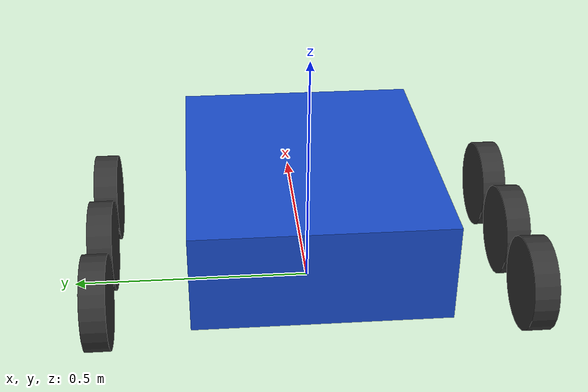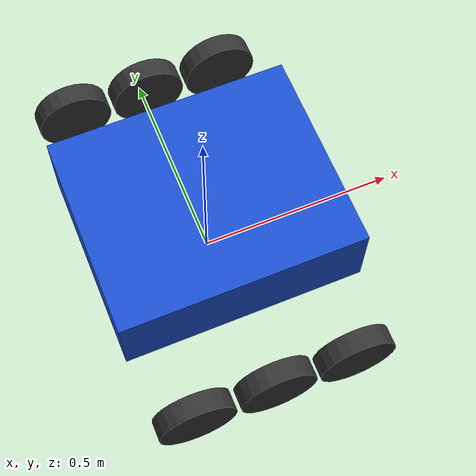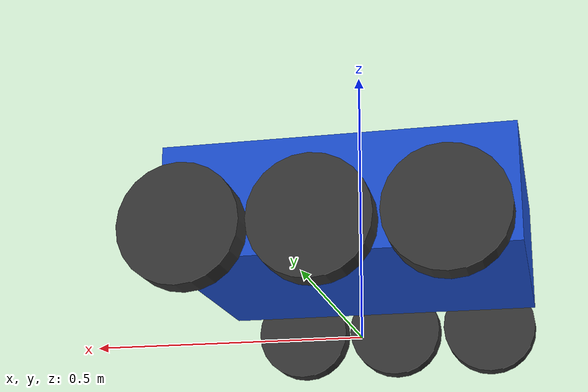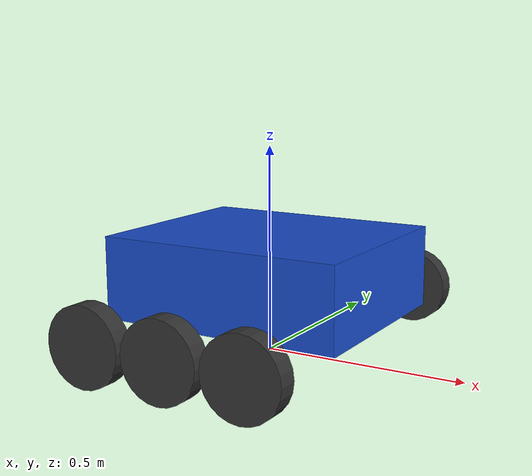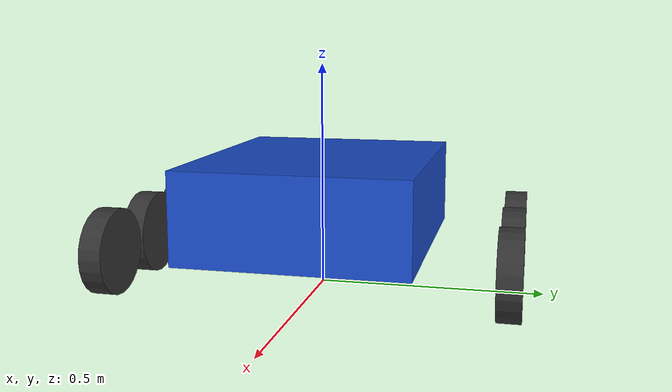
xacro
<?xml version="1.0"?>
<robot xmlns:xacro="http://www.ros.org/wiki/xacro" name="urc_rover">

  <!-- Absolute path to the SPARK config YAML (PID gains). The launch file
       resolves and passes this; empty default => plugin uses built-in gains. -->
  <xacro:arg name="spark_config" default=""/>

  <!-- SocketCAN interface for the SPARKs, set by the launch can_interface arg -->
  <xacro:arg name="can_interface" default="can0"/>

  <!-- All units: meters, kg, radians -->

  <!-- Chassis: simple box -->
  <xacro:property name="chassis_length" value="0.60"/>
  <xacro:property name="chassis_width"  value="0.50"/>
  <xacro:property name="chassis_height" value="0.20"/>
  <xacro:property name="chassis_mass"   value="25.0"/>

  <!-- Wheels -->
  <xacro:property name="wheel_radius"     value="0.09525"/>   <!-- 3.75 in -->
  <xacro:property name="wheel_width"      value="0.05"/>
  <xacro:property name="wheel_mass"       value="0.5"/>
  <xacro:property name="wheel_separation" value="0.8636"/>    <!-- 34 in center to center -->

  <!-- Wheel Y offset from base_link center (half track width) -->
  <xacro:property name="wheel_y_offset" value="${wheel_separation / 2.0}"/>

  <!-- Wheel X positions (front/middle/back), measured from base_link center -->
  <xacro:property name="wheel_x_front"  value="0.20"/>
  <xacro:property name="wheel_x_middle" value="0.00"/>
  <xacro:property name="wheel_x_back"   value="-0.20"/>

  <!-- Chassis sits so wheel axles are at ground level (z=0 at ground) -->
  <xacro:property name="chassis_z_offset" value="${wheel_radius + chassis_height / 2.0}"/>

  <!-- INERTIA MACROS -->

  <xacro:macro name="box_inertia" params="m x y z">
    <inertial>
      <mass value="${m}"/>
      <inertia ixx="${m*(y*y+z*z)/12}" ixy="0" ixz="0"
               iyy="${m*(x*x+z*z)/12}" iyz="0"
               izz="${m*(x*x+y*y)/12}"/>
    </inertial>
  </xacro:macro>

  <xacro:macro name="cylinder_inertia" params="m r l">
    <inertial>
      <mass value="${m}"/>
      <inertia ixx="${m*(3*r*r+l*l)/12}" ixy="0" ixz="0"
               iyy="${m*(3*r*r+l*l)/12}" iyz="0"
               izz="${m*r*r/2}"/>
    </inertial>
  </xacro:macro>

  <!-- WHEEL MACRO -->

  <xacro:macro name="wheel" params="name x_pos y_pos">
    <link name="${name}_link">
      <visual>
        <geometry>
          <cylinder radius="${wheel_radius}" length="${wheel_width}"/>
        </geometry>
        <material name="dark_grey">
          <color rgba="0.2 0.2 0.2 1.0"/>
        </material>
      </visual>
      <collision>
        <geometry>
          <cylinder radius="${wheel_radius}" length="${wheel_width}"/>
        </geometry>
      </collision>
      <xacro:cylinder_inertia m="${wheel_mass}" r="${wheel_radius}" l="${wheel_width}"/>
    </link>

    <joint name="${name}_joint" type="continuous">
      <parent link="base_link"/>
      <child link="${name}_link"/>
      <!-- Wheel cylinder axis is Z in its own frame; we rotate so it aligns
           with the Y axis of base_link (the axle direction). -->
      <origin xyz="${x_pos} ${y_pos} 0.0" rpy="${-pi/2} 0 0"/>
      <axis xyz="0 0 1"/>
    </joint>
  </xacro:macro>

  <!--  LINKS & JOINTS  -->

  <!-- base_link: at wheel-axle height, center of chassis footprint -->
  <link name="base_link">
    <visual>
      <origin xyz="0 0 ${chassis_height / 2.0}" rpy="0 0 0"/>
      <geometry>
        <box size="${chassis_length} ${chassis_width} ${chassis_height}"/>
      </geometry>
      <material name="blue">
        <color rgba="0.1 0.3 0.8 1.0"/>
      </material>
    </visual>
    <collision>
      <origin xyz="0 0 ${chassis_height / 2.0}" rpy="0 0 0"/>
      <geometry>
        <box size="${chassis_length} ${chassis_width} ${chassis_height}"/>
      </geometry>
    </collision>
    <xacro:box_inertia m="${chassis_mass}"
                       x="${chassis_length}"
                       y="${chassis_width}"
                       z="${chassis_height}"/>
  </link>

  <!-- base_footprint: on the ground directly below base_link (for nav) -->
  <link name="base_footprint"/>
  <joint name="base_footprint_joint" type="fixed">
    <parent link="base_footprint"/>
    <child link="base_link"/>
    <origin xyz="0 0 ${wheel_radius}" rpy="0 0 0"/>
  </joint>

  <!-- 6 wheels -->
  <xacro:wheel name="front_right_wheel"  x_pos="${wheel_x_front}"  y_pos="${-wheel_y_offset}"/>
  <xacro:wheel name="middle_right_wheel" x_pos="${wheel_x_middle}" y_pos="${-wheel_y_offset}"/>
  <xacro:wheel name="back_right_wheel"   x_pos="${wheel_x_back}"   y_pos="${-wheel_y_offset}"/>

  <!-- Left side -->
  <xacro:wheel name="front_left_wheel"   x_pos="${wheel_x_front}"  y_pos="${wheel_y_offset}"/>
  <xacro:wheel name="middle_left_wheel"  x_pos="${wheel_x_middle}" y_pos="${wheel_y_offset}"/>
  <xacro:wheel name="back_left_wheel"    x_pos="${wheel_x_back}"   y_pos="${wheel_y_offset}"/>

  <!-- ROS2_CONTROL -->

  <ros2_control name="SparkCanSystem" type="system">
    <hardware>
      <plugin>storm_teleop/SparkCanHardware</plugin>
      <param name="can_interface">$(arg can_interface)</param>
      <param name="gear_ratio">9.0</param>
      <param name="burn_flash">false</param>
      <!-- Pre-flight gate: if true, on_configure fails (rover won't activate)
           unless all 6 SPARKs are seen on the bus. Set false to allow limping
           up with fewer. -->
      <param name="require_all_sparks">true</param>
      <!-- No status frame for this long = SPARK offline; the rest keep driving -->
      <param name="status_timeout_ms">100</param>
      <!-- SPARK MAX onboard velocity PID gains live in config/sparks.yaml.
           The launch file resolves that file's absolute path into this param. -->
      <param name="spark_config">$(arg spark_config)</param>
      <!-- coast_on_turn wheels coast during hard turns so the rover doesn't tip.
           Turn ratio is 0 straight, 1 point turn. Enter above 1 disables it. -->
      <param name="coast_enter_ratio">0.5</param>
      <param name="coast_exit_ratio">0.3</param>
      <param name="coast_min_speed">0.5</param>  <!-- rad/s -->
    </hardware>

    <!-- RIGHT SIDE (looking from behind the rover) -->
    <joint name="back_right_wheel_joint">
      <param name="can_id">4</param>
      <param name="inverted">false</param>
      <command_interface name="velocity"/>
      <state_interface name="position"/>
      <state_interface name="velocity"/>
      <state_interface name="voltage"/>
      <state_interface name="online"/>
      <state_interface name="coasting"/>
    </joint>
    <joint name="middle_right_wheel_joint">
      <param name="can_id">5</param>
      <param name="inverted">false</param>
      <param name="coast_on_turn">true</param>
      <command_interface name="velocity"/>
      <state_interface name="position"/>
      <state_interface name="velocity"/>
      <state_interface name="voltage"/>
      <state_interface name="online"/>
      <state_interface name="coasting"/>
    </joint>
    <joint name="front_right_wheel_joint">
      <param name="can_id">6</param>
      <param name="inverted">false</param>
      <command_interface name="velocity"/>
      <state_interface name="position"/>
      <state_interface name="velocity"/>
      <state_interface name="voltage"/>
      <state_interface name="online"/>
      <state_interface name="coasting"/>
    </joint>

    <!-- LEFT SIDE -->
    <joint name="front_left_wheel_joint">
      <param name="can_id">1</param>
      <param name="inverted">true</param>
      <command_interface name="velocity"/>
      <state_interface name="position"/>
      <state_interface name="velocity"/>
      <state_interface name="voltage"/>
      <state_interface name="online"/>
      <state_interface name="coasting"/>
    </joint>
    <joint name="middle_left_wheel_joint">
      <param name="can_id">2</param>
      <param name="inverted">true</param>
      <param name="coast_on_turn">true</param>
      <command_interface name="velocity"/>
      <state_interface name="position"/>
      <state_interface name="velocity"/>
      <state_interface name="voltage"/>
      <state_interface name="online"/>
      <state_interface name="coasting"/>
    </joint>
    <joint name="back_left_wheel_joint">
      <param name="can_id">3</param>
      <param name="inverted">true</param>
      <command_interface name="velocity"/>
      <state_interface name="position"/>
      <state_interface name="velocity"/>
      <state_interface name="voltage"/>
      <state_interface name="online"/>
      <state_interface name="coasting"/>
    </joint>
  </ros2_control>

</robot>
